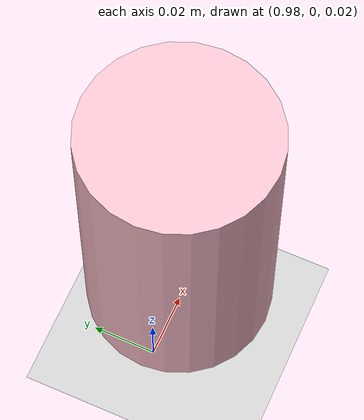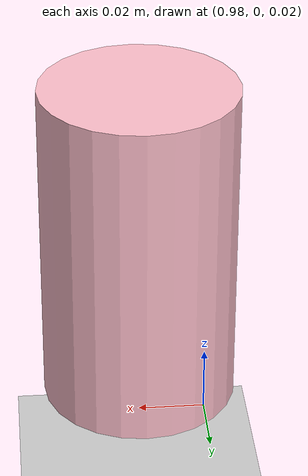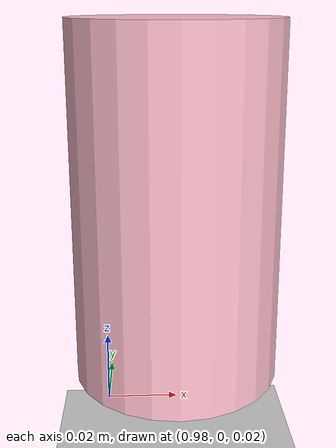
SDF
<?xml version="1.0" ?>
<sdf version="1.7">
    <world name="prosthesis_world">

        <plugin filename="gz-sim-physics-system" name="gz::sim::systems::Physics"/>
        <plugin filename="gz-sim-user-commands-system" name="gz::sim::systems::UserCommands"/>
        <plugin filename="gz-sim-scene-broadcaster-system" name="gz::sim::systems::SceneBroadcaster"/>
        <plugin filename="gz-sim-sensors-system" name="gz::sim::systems::Sensors">
            <render_engine>ogre2</render_engine>
        </plugin>
        <plugin filename="gz-sim-contact-system" name="gz::sim::systems::Contact"/>
        <plugin filename="gz-sim-imu-system" name="gz::sim::systems::Imu"/>
        <plugin filename="gz-sim-forcetorque-system" name="gz::sim::systems::ForceTorque"/>

        <physics name="1ms" type="ignored">
            <max_step_size>0.001</max_step_size>
            <real_time_factor>1.0</real_time_factor>
        </physics>

        <gravity>0 0 -9.8</gravity>

        <light type="directional" name="sun">
            <cast_shadows>true</cast_shadows>
            <pose>0 0 10 0 0 0</pose>
            <diffuse>0.8 0.8 0.8 1</diffuse>
            <specular>0.2 0.2 0.2 1</specular>
            <attenuation>
                <range>1000</range>
                <constant>0.9</constant>
                <linear>0.01</linear>
                <quadratic>0.001</quadratic>
            </attenuation>
            <direction>-0.5 0.1 -0.9</direction>
        </light>

        <!-- GUI plugins to overwrite GUI default configuration -->
        <gui>
            <!-- 3D scene -->
            <plugin filename="MinimalScene" name="3D View">
                <gz-gui>
                    <title>3D View</title>
                    <property type="bool" key="showTitleBar">false</property>
                    <property type="string" key="state">docked</property>
                </gz-gui>
                <engine>ogre2</engine>
                <scene>scene</scene>
                <ambient_light>0.4 0.4 0.4</ambient_light>
                <background_color>0.8 0.8 0.8</background_color>
                <camera_pose>0.25 -1 1 0 0.25 1.8</camera_pose>
            </plugin>

            <!-- Plugins that add functionality to the scene -->
            <plugin filename="EntityContextMenuPlugin" name="Entity context menu">
                <gz-gui>
                    <property key="state" type="string">floating</property>
                    <property key="width" type="double">5</property>
                    <property key="height" type="double">5</property>
                    <property key="showTitleBar" type="bool">false</property>
                </gz-gui>
            </plugin>

            <plugin filename="GzSceneManager" name="Scene Manager">
                <gz-gui>
                    <property key="resizable" type="bool">false</property>
                    <property key="width" type="double">5</property>
                    <property key="height" type="double">5</property>
                    <property key="state" type="string">floating</property>
                    <property key="showTitleBar" type="bool">false</property>
                </gz-gui>
            </plugin>

            <plugin filename="InteractiveViewControl" name="Interactive view control">
                <gz-gui>
                    <property key="resizable" type="bool">false</property>
                    <property key="width" type="double">5</property>
                    <property key="height" type="double">5</property>
                    <property key="state" type="string">floating</property>
                    <property key="showTitleBar" type="bool">false</property>
                </gz-gui>
            </plugin>

            <plugin filename="CameraTracking" name="Camera Tracking">
                <gz-gui>
                    <property key="resizable" type="bool">false</property>
                    <property key="width" type="double">5</property>
                    <property key="height" type="double">5</property>
                    <property key="state" type="string">floating</property>
                    <property key="showTitleBar" type="bool">false</property>
                </gz-gui>
            </plugin>

            <plugin filename="MarkerManager" name="Marker manager">
                <gz-gui>
                    <property key="resizable" type="bool">false</property>
                    <property key="width" type="double">5</property>
                    <property key="height" type="double">5</property>
                    <property key="state" type="string">floating</property>
                    <property key="showTitleBar" type="bool">false</property>
                </gz-gui>
            </plugin>

            <plugin filename="PointCloud">
                <point_cloud_topic>camera/point_cloud</point_cloud_topic>
            </plugin>

            <plugin filename="SelectEntities" name="Select Entities">
                <gz-gui>
                    <property key="resizable" type="bool">false</property>
                    <property key="width" type="double">5</property>
                    <property key="height" type="double">5</property>
                    <property key="state" type="string">floating</property>
                    <property key="showTitleBar" type="bool">false</property>
                </gz-gui>
            </plugin>

            <plugin filename="Spawn" name="Spawn Entities">
                <gz-gui>
                    <property key="resizable" type="bool">false</property>
                    <property key="width" type="double">5</property>
                    <property key="height" type="double">5</property>
                    <property key="state" type="string">floating</property>
                    <property key="showTitleBar" type="bool">false</property>
                </gz-gui>
            </plugin>

            <plugin filename="VisualizationCapabilities" name="Visualization Capabilities">
                <gz-gui>
                    <property key="resizable" type="bool">false</property>
                    <property key="width" type="double">5</property>
                    <property key="height" type="double">5</property>
                    <property key="state" type="string">floating</property>
                    <property key="showTitleBar" type="bool">false</property>
                </gz-gui>
            </plugin>

            <!-- World control -->
            <plugin filename="WorldControl" name="World control">
                <gz-gui>
                    <title>World control</title>
                    <property type="bool" key="showTitleBar">false</property>
                    <property type="bool" key="resizable">false</property>
                    <property type="double" key="height">72</property>
                    <property type="double" key="z">1</property>
                    <property type="string" key="state">floating</property>
                    <anchors target="3D View">
                        <line own="left" target="left"/>
                        <line own="bottom" target="bottom"/>
                    </anchors>
                </gz-gui>
                <play_pause>true</play_pause>
                <step>true</step>
                <start_paused>true</start_paused>
                <use_event>true</use_event>
            </plugin>

            <!-- World statistics -->
            <plugin filename="WorldStats" name="World stats">
                <gz-gui>
                    <title>World stats</title>
                    <property type="bool" key="showTitleBar">false</property>
                    <property type="bool" key="resizable">false</property>
                    <property type="double" key="height">110</property>
                    <property type="double" key="width">290</property>
                    <property type="double" key="z">1</property>
                    <property type="string" key="state">floating</property>
                    <anchors target="3D View">
                        <line own="right" target="right"/>
                        <line own="bottom" target="bottom"/>
                    </anchors>
                </gz-gui>
                <sim_time>true</sim_time>
                <real_time>true</real_time>
                <real_time_factor>true</real_time_factor>
                <iterations>true</iterations>
            </plugin>

            <!-- Insert simple shapes -->
            <plugin filename="Shapes" name="Shapes">
                <gz-gui>
                    <property key="resizable" type="bool">false</property>
                    <property key="x" type="double">0</property>
                    <property key="y" type="double">0</property>
                    <property key="width" type="double">300</property>
                    <property key="height" type="double">50</property>
                    <property key="state" type="string">floating</property>
                    <property key="showTitleBar" type="bool">false</property>
                    <property key="cardBackground" type="string">#666666</property>
                </gz-gui>
            </plugin>

            <!-- Insert lights -->
            <plugin filename="Lights" name="Lights">
                <gz-gui>
                    <property key="resizable" type="bool">false</property>
                    <property key="x" type="double">300</property>
                    <property key="y" type="double">0</property>
                    <property key="width" type="double">150</property>
                    <property key="height" type="double">50</property>
                    <property key="state" type="string">floating</property>
                    <property key="showTitleBar" type="bool">false</property>
                    <property key="cardBackground" type="string">#666666</property>
                </gz-gui>
            </plugin>

            <!-- Translate / rotate -->
            <plugin filename="TransformControl" name="Transform control">
                <gz-gui>
                    <property key="resizable" type="bool">false</property>
                    <property key="x" type="double">0</property>
                    <property key="y" type="double">50</property>
                    <property key="width" type="double">250</property>
                    <property key="height" type="double">50</property>
                    <property key="state" type="string">floating</property>
                    <property key="showTitleBar" type="bool">false</property>
                    <property key="cardBackground" type="string">#777777</property>
                </gz-gui>
            </plugin>

            <!-- Screenshot -->
            <plugin filename="Screenshot" name="Screenshot">
                <gz-gui>
                    <property key="resizable" type="bool">false</property>
                    <property key="x" type="double">250</property>
                    <property key="y" type="double">50</property>
                    <property key="width" type="double">50</property>
                    <property key="height" type="double">50</property>
                    <property key="state" type="string">floating</property>
                    <property key="showTitleBar" type="bool">false</property>
                    <property key="cardBackground" type="string">#777777</property>
                </gz-gui>
            </plugin>

            <!-- Copy/Paste -->
            <plugin filename="CopyPaste" name="CopyPaste">
                <gz-gui>
                    <property key="resizable" type="bool">false</property>
                    <property key="x" type="double">300</property>
                    <property key="y" type="double">50</property>
                    <property key="width" type="double">100</property>
                    <property key="height" type="double">50</property>
                    <property key="state" type="string">floating</property>
                    <property key="showTitleBar" type="bool">false</property>
                    <property key="cardBackground" type="string">#777777</property>
                </gz-gui>
            </plugin>

            <!-- Inspector -->
            <plugin filename="ComponentInspector" name="Component inspector">
                <gz-gui>
                    <property type="bool" key="showTitleBar">false</property>
                    <property type="string" key="state">docked</property>
                </gz-gui>
            </plugin>

            <!-- Entity tree -->
            <plugin filename="EntityTree" name="Entity tree">
                <gz-gui>
                    <property type="bool" key="showTitleBar">false</property>
                    <property type="string" key="state">docked</property>
                </gz-gui>
            </plugin>
        </gui>

        <!-- MODELS -->
        <model name="ground_plane">
            <static>true</static>
            <link name="link">
                <collision name="collision">
                <geometry>
                    <plane>
                    <normal>0 0 1</normal>
                    <size>100 100</size>
                    </plane>
                </geometry>
                <surface>
                    <friction>
                    <ode>
                        <mu>50</mu>
                    </ode>
                    </friction>
                    <bounce/>
                    <contact/>
                </surface>
                </collision>
                <visual name="visual">
                <geometry>
                    <plane>
                    <normal>0 0 1</normal>
                    <size>100 100</size>
                    </plane>
                </geometry>
                <material>
                    <ambient>0.8 0.8 0.8 1</ambient>
                    <diffuse>0.8 0.8 0.8 1</diffuse>
                    <specular>0.8 0.8 0.8 1</specular>
                </material>
                </visual>
            </link>
        </model>

        <!-- WALL -->

        <model name="cylinder_1">
            <link name="link_cylinder">
            <pose>1 0 0.08 0 0 0</pose>
            <inertial>
                <mass>1.0</mass>
                <inertia>
                <ixx>0.1</ixx>
                <iyy>0.1</iyy>
                <izz>0.1</izz>
                </inertia>
            </inertial>
            <collision name="collision_cylinder">
                <geometry>
                    <cylinder>
                        <radius>0.029</radius>
                        <length>0.1</length>
                    </cylinder>
                </geometry>
            </collision>
            <visual name="visual_cylinder">
                <geometry>
                    <cylinder>
                        <radius>0.029</radius>
                        <length>0.1</length>
                    </cylinder>
                </geometry>
                <material>
                    <ambient>1 0.75 0.8 1</ambient>
                    <diffuse>1 0.75 0.8 1</diffuse>
                    <specular>1 0.75 0.8 1</specular>
                </material>
            </visual>
            </link>
        </model>

    </world>
</sdf>
